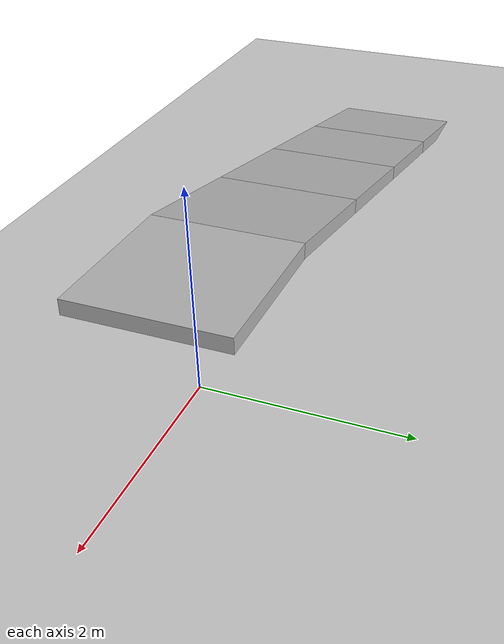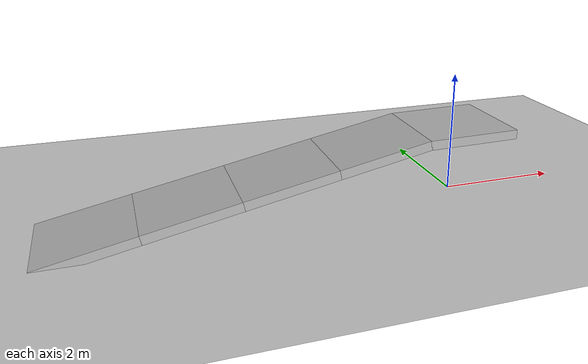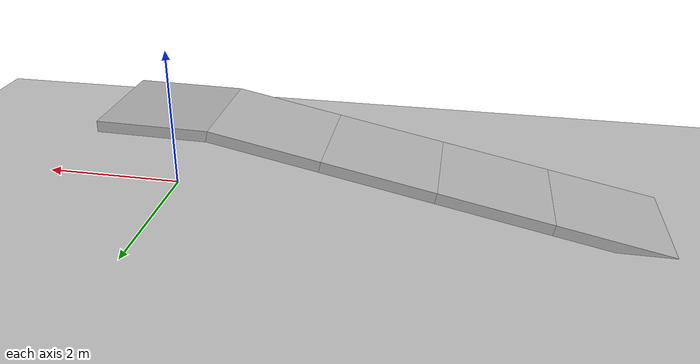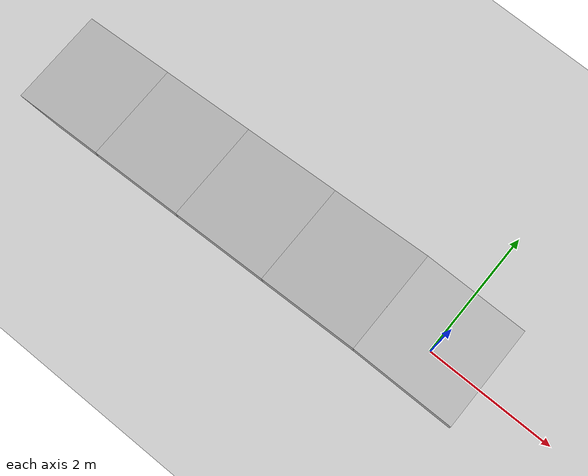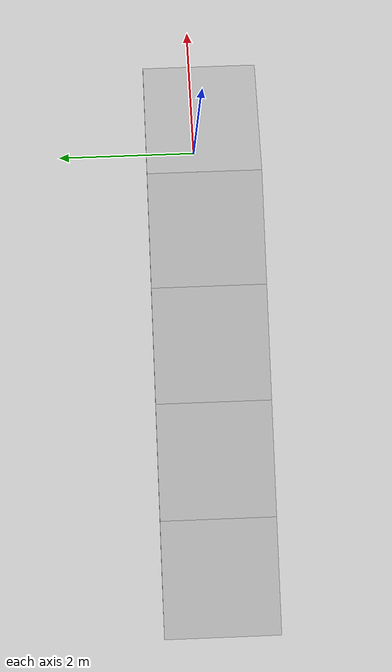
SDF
<?xml version="1.0" ?>
<sdf version="1.4">

  <world name="default">
    <plugin name="hello_world" filename="/home/yehia/gazebo_plugin_tutorial/build/libhello_world.so"/>
    <model name='ground_plane'>
      <static>1</static>
      <plugin name="hello_world" filename="libhello_world.so"/>
      <link name='link'>
        <collision name='collision'>
          <geometry>
            <plane>
              <normal>0 0 1</normal>
              <size>100 100</size>
            </plane>
          </geometry>
          <surface>
            <bounce>
              <restitution_coefficient>0</restitution_coefficient>
              <threshold>1e+06</threshold>
            </bounce>
            <friction>
              <torsional>
                <coefficient>1.0</coefficient>
              </torsional>
              <ode>
                <mu>1.2</mu>
                <mu2>1.2</mu2>
              </ode>
              <bullet>
                <rolling_friction>1.0</rolling_friction>
                <friction2>1.0</friction2>
              </bullet>
            </friction>
            <contact>
              <ode>
                <kp>300000</kp>
                <kd>1000</kd>
              </ode>
              <bullet>
                <kp>300000</kp>
                <kd>1000</kd>
                <split_impulse>1</split_impulse>
                <split_impulse_penetration_threshold>-0.01</split_impulse_penetration_threshold>
              </bullet>
            </contact>
          </surface>
          <max_contacts>1</max_contacts>
        </collision>
        <visual name='visual'>
          <cast_shadows>0</cast_shadows>
          <geometry>
            <plane>
              <normal>0 0 1</normal>
              <size>100 100</size>
            </plane>
          </geometry>
          <material>
            <script>
              <uri>file://media/materials/scripts/gazebo.material</uri>
              <name>Gazebo/Grey</name>
            </script>
          </material>
        </visual>
        <self_collide>0</self_collide>
        <kinematic>0</kinematic>
      </link>
    </model>
    <model name='walkway_metal_straight_0'>
      <static>1</static>
      <link name='link'>
        <collision name='collision'>
          <pose frame=''>0 0.762 0.076075 0 -0 0</pose>
          <geometry>
            <box>
              <size>1.524 1.524 0.15215</size>
            </box>
          </geometry>
          <max_contacts>1</max_contacts>
          <surface>
            <bounce>
              <restitution_coefficient>0</restitution_coefficient>
              <threshold>1e+06</threshold>
            </bounce>
            <friction>
              <torsional>
                <coefficient>1.0</coefficient>
              </torsional>
              <ode>
                <mu>1.2</mu>
                <mu2>1.2</mu2>
              </ode>
              <bullet>
                <rolling_friction>1.0</rolling_friction>
                <friction2>1.0</friction2>
              </bullet>
            </friction>
            <contact>
              <ode>
                <kp>300000</kp>
                <kd>1000</kd>
              </ode>
              <bullet>
                <kp>300000</kp>
                <kd>1000</kd>
                <split_impulse>1</split_impulse>
                <split_impulse_penetration_threshold>-0.01</split_impulse_penetration_threshold>
              </bullet>
            </contact>
          </surface>
        </collision>
        <visual name='visual'>
          <geometry>
            <mesh>
              <scale>0.001 0.001 0.001</scale>
              <uri>model://walkway_metal_straight/meshes/mesh.obj</uri>
            </mesh>
          </geometry>
        </visual>
        <self_collide>0</self_collide>
        <enable_wind>0</enable_wind>
        <kinematic>0</kinematic>
      </link>
      <pose frame=''>-0.019200 -0.8 1.066340 0 -0.015 0</pose>
    </model>

    <model name='walkway_metal_straight_1'>
      <static>1</static>
      <link name='link'>
        <collision name='collision'>
          <pose frame=''>0 0.762 0.076075 0 -0 0</pose>
          <geometry>
            <box>
              <size>1.524 1.524 0.15215</size>
            </box>
          </geometry>
          <max_contacts>1</max_contacts>
          <surface>
            <bounce>
              <restitution_coefficient>0</restitution_coefficient>
              <threshold>1e+06</threshold>
            </bounce>
            <friction>
              <torsional>
                <coefficient>1.0</coefficient>
              </torsional>
              <ode>
                <mu>1.2</mu>
                <mu2>1.2</mu2>
              </ode>
              <bullet>
                <rolling_friction>1.0</rolling_friction>
                <friction2>1.0</friction2>
              </bullet>
            </friction>
            <contact>
              <ode>
                <kp>300000</kp>
                <kd>1000</kd>
              </ode>
              <bullet>
                <kp>300000</kp>
                <kd>1000</kd>
                <split_impulse>1</split_impulse>
                <split_impulse_penetration_threshold>-0.01</split_impulse_penetration_threshold>
              </bullet>
            </contact>
          </surface>
        </collision>
        <visual name='visual'>
          <geometry>
            <mesh>
              <scale>0.001 0.001 0.001</scale>
              <uri>model://walkway_metal_straight/meshes/mesh.obj</uri>
            </mesh>
          </geometry>
        </visual>
        <self_collide>0</self_collide>
        <enable_wind>0</enable_wind>
        <kinematic>0</kinematic>
      </link>
      <pose frame=''>-1.5 -0.8 0.906580 0 -0.2 0</pose>
    </model>

    <model name='walkway_metal_straight_2'>
      <static>1</static>
      <link name='link'>
        <collision name='collision'>
          <pose frame=''>0 0.762 0.076075 0 -0 0</pose>
          <geometry>
            <box>
              <size>1.524 1.524 0.15215</size>
            </box>
          </geometry>
          <max_contacts>1</max_contacts>
          <surface>
            <bounce>
              <restitution_coefficient>0</restitution_coefficient>
              <threshold>1e+06</threshold>
            </bounce>
            <friction>
              <torsional>
                <coefficient>1.0</coefficient>
              </torsional>
              <ode>
                <mu>1.2</mu>
                <mu2>1.2</mu2>
              </ode>
              <bullet>
                <rolling_friction>1.0</rolling_friction>
                <friction2>1.0</friction2>
              </bullet>
            </friction>
            <contact>
              <ode>
                <kp>300000</kp>
                <kd>1000</kd>
              </ode>
              <bullet>
                <kp>300000</kp>
                <kd>1000</kd>
                <split_impulse>1</split_impulse>
                <split_impulse_penetration_threshold>-0.01</split_impulse_penetration_threshold>
              </bullet>
            </contact>
          </surface>
        </collision>
        <visual name='visual'>
          <geometry>
            <mesh>
              <scale>0.001 0.001 0.001</scale>
              <uri>model://walkway_metal_straight/meshes/mesh.obj</uri>
            </mesh>
          </geometry>
        </visual>
        <self_collide>0</self_collide>
        <enable_wind>0</enable_wind>
        <kinematic>0</kinematic>
      </link>
      <pose frame=''>-2.99 -0.8 0.60456 0 -0.2 0</pose>
    </model>

    <model name='walkway_metal_straight_3'>
      <static>1</static>
      <link name='link'>
        <collision name='collision'>
          <pose frame=''>0 0.762 0.076075 0 -0 0</pose>
          <geometry>
            <box>
              <size>1.524 1.524 0.15215</size>
            </box>
          </geometry>
          <max_contacts>1</max_contacts>
          <surface>
            <bounce>
              <restitution_coefficient>0</restitution_coefficient>
              <threshold>1e+06</threshold>
            </bounce>
            <friction>
              <torsional>
                <coefficient>1.0</coefficient>
              </torsional>
              <ode>
                <mu>1.2</mu>
                <mu2>1.2</mu2>
              </ode>
              <bullet>
                <rolling_friction>1.0</rolling_friction>
                <friction2>1.0</friction2>
              </bullet>
            </friction>
            <contact>
              <ode>
                <kp>300000</kp>
                <kd>1000</kd>
              </ode>
              <bullet>
                <kp>300000</kp>
                <kd>1000</kd>
                <split_impulse>1</split_impulse>
                <split_impulse_penetration_threshold>-0.01</split_impulse_penetration_threshold>
              </bullet>
            </contact>
          </surface>
        </collision>
        <visual name='visual'>
          <geometry>
            <mesh>
              <scale>0.001 0.001 0.001</scale>
              <uri>model://walkway_metal_straight/meshes/mesh.obj</uri>
            </mesh>
          </geometry>
        </visual>
        <self_collide>0</self_collide>
        <enable_wind>0</enable_wind>
        <kinematic>0</kinematic>
      </link>
      <pose frame=''>-4.48 -0.8 0.3025 0 -0.2 0</pose>
    </model>

    <model name='walkway_metal_straight_4'>
      <static>1</static>
      <link name='link'>
        <collision name='collision'>
          <pose frame=''>0 0.762 0.076075 0 -0 0</pose>
          <geometry>
            <box>
              <size>1.524 1.524 0.15215</size>
            </box>
          </geometry>
          <max_contacts>1</max_contacts>
          <surface>
            <bounce>
              <restitution_coefficient>0</restitution_coefficient>
              <threshold>1e+06</threshold>
            </bounce>
            <friction>
              <torsional>
                <coefficient>1.0</coefficient>
              </torsional>
              <ode>
                <mu>1.2</mu>
                <mu2>1.2</mu2>
              </ode>
              <bullet>
                <rolling_friction>1.0</rolling_friction>
                <friction2>1.0</friction2>
              </bullet>
            </friction>
            <contact>
              <ode>
                <kp>300000</kp>
                <kd>1000</kd>
              </ode>
              <bullet>
                <kp>300000</kp>
                <kd>1000</kd>
                <split_impulse>1</split_impulse>
                <split_impulse_penetration_threshold>-0.01</split_impulse_penetration_threshold>
              </bullet>
            </contact>
          </surface>
        </collision>
        <visual name='visual'>
          <geometry>
            <mesh>
              <scale>0.001 0.001 0.001</scale>
              <uri>model://walkway_metal_straight/meshes/mesh.obj</uri>
            </mesh>
          </geometry>
        </visual>
        <self_collide>0</self_collide>
        <enable_wind>0</enable_wind>
        <kinematic>0</kinematic>
      </link>
      <pose frame=''>-5.972 -0.8 0.0 0 -0.2 0</pose>
    </model>

    <!-- Global light source -->
    <light name='sun' type='directional'>
      <cast_shadows>1</cast_shadows>
      <pose frame=''>0 0 10 0 -0 0</pose>
      <diffuse>0.8 0.8 0.8 1</diffuse>
      <specular>0.2 0.2 0.2 1</specular>
      <attenuation>
        <range>1000</range>
        <constant>0.9</constant>
        <linear>0.01</linear>
        <quadratic>0.001</quadratic>
      </attenuation>
      <direction>-0.5 0.1 -0.9</direction>
    </light>

    <scene>
      <ambient>0.4 0.4 0.4 1</ambient>
      <background>0.7 0.7 0.7 1</background>
      <shadows>0</shadows>
    </scene>

    <gui fullscreen='0'>
      <camera name='user_camera'>
        <pose frame=''>0.018919 -1.958581 0.586953 0 0.2 1.54</pose>
        <view_controller>orbit</view_controller>
        <projection_type>perspective</projection_type>
      </camera>
    </gui>

    <gravity>0 0 -9.8</gravity>

    <magnetic_field>0 0 0</magnetic_field>

    <atmosphere type='adiabatic'/>
    <physics name='default_physics' default='0' type='ode'>
      <ode>
        <constraints>
          <erp>0.5</erp>
        </constraints>
      </ode>
    </physics>

  </world>
</sdf>
